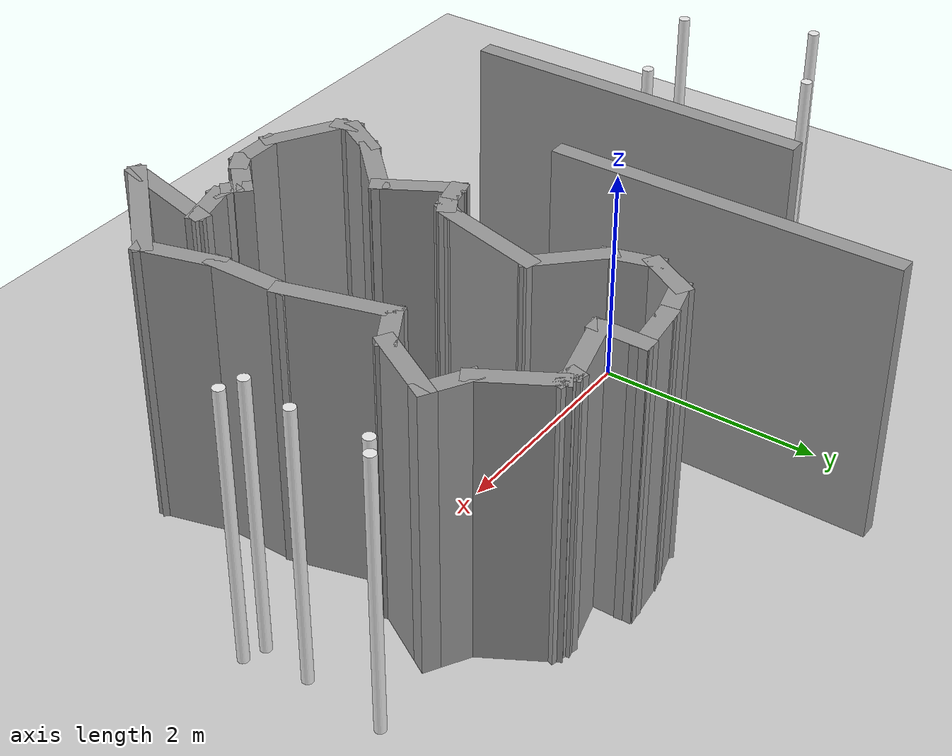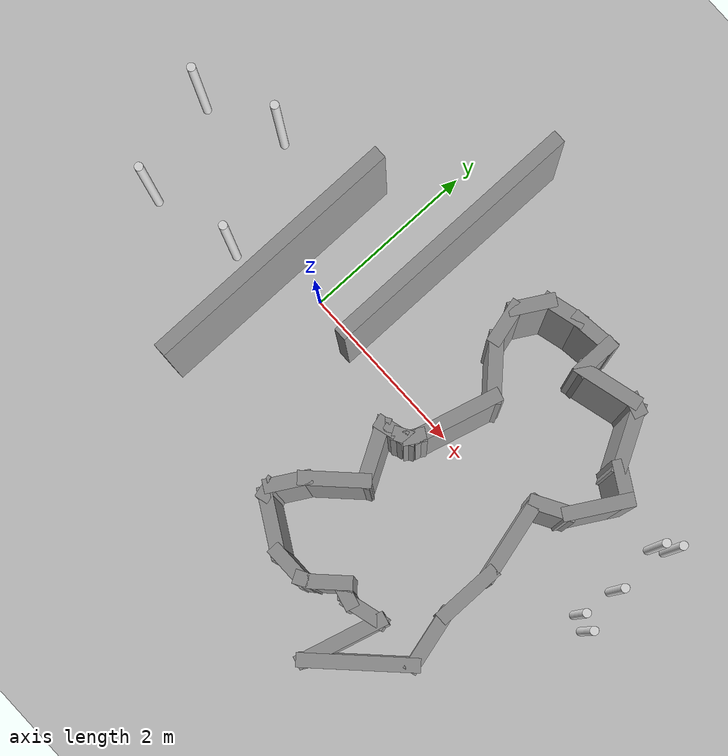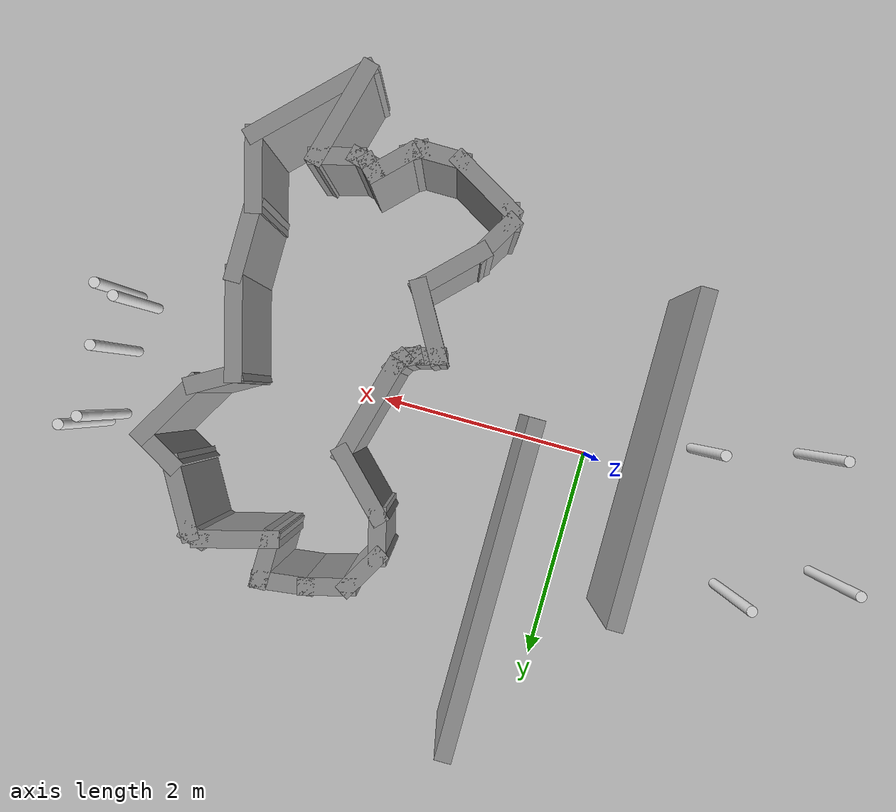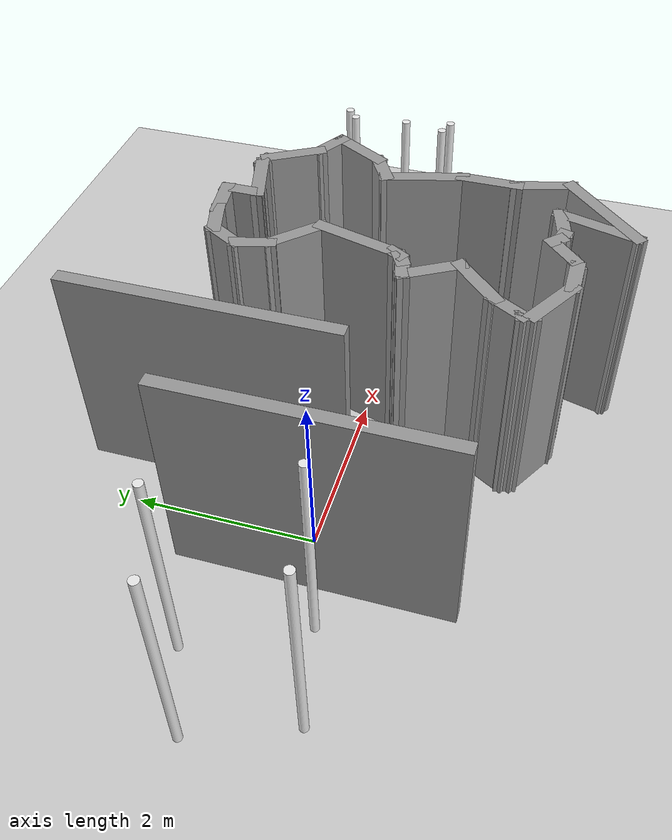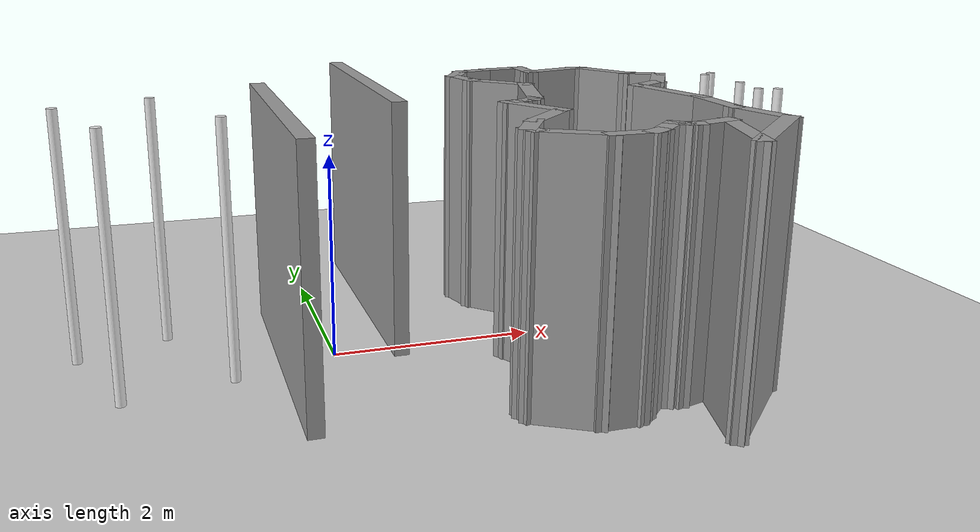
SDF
<sdf version="1.7">
 <world name="default">
  <model name="ground_plane">
   <static>1</static>
   <link name="link">
    <collision name="collision">
     <geometry><plane><normal>0 0 1</normal><size>100 100</size></plane></geometry>
     <surface><friction><ode><mu>100</mu><mu2>50</mu2></ode></friction></surface>
    </collision>
    <visual name="visual">
     <cast_shadows>0</cast_shadows>
     <geometry><plane><normal>0 0 1</normal><size>100 100</size></plane></geometry>
     <material>
      <script><uri>file://media/materials/scripts/gazebo.material</uri><name>Gazebo/Grey</name></script>
     </material>
    </visual>
   </link>
  </model>
  <model name="3m_wall">
   <pose>2.11152 0.271513 0 0 -0 0</pose>
   <link name="Wall_33">
    <collision name="Wall_33_Collision">
     <geometry><box><size>3 0.15 2.5</size></box></geometry>
     <pose>0 0 1.25 0 -0 0</pose>
    </collision>
    <visual name="Wall_33_Visual">
     <pose>0 0 1.25 0 -0 0</pose>
     <geometry><box><size>3 0.15 2.5</size></box></geometry>
     <material>
      <script><uri>file://media/materials/scripts/gazebo.material</uri><name>Gazebo/Grey</name></script>
      <ambient>1 1 1 1</ambient>
     </material>
     <meta><layer>0</layer></meta>
    </visual>
    <pose>-2.5875 -0.4275 0 0 -0 -1.5708</pose>
   </link>
   <static>1</static>
  </model>
  <model name="3m_wall_clone">
   <pose>3.21394 1.72078 0 0 -0 0</pose>
   <link name="Wall_33">
    <collision name="Wall_33_Collision">
     <geometry><box><size>3 0.15 2.5</size></box></geometry>
     <pose>0 0 1.25 0 -0 0</pose>
    </collision>
    <visual name="Wall_33_Visual">
     <pose>0 0 1.25 0 -0 0</pose>
     <geometry><box><size>3 0.15 2.5</size></box></geometry>
     <material>
      <script><uri>file://media/materials/scripts/gazebo.material</uri><name>Gazebo/Grey</name></script>
      <ambient>1 1 1 1</ambient>
     </material>
     <meta><layer>0</layer></meta>
    </visual>
    <pose>-2.5875 -0.4275 0 0 -0 -1.5708</pose>
   </link>
   <static>1</static>
  </model>
  <model name="center_wall003">
   <pose>3.21505 0.764634 0 0 -0 0</pose>
   <link name="Wall_50">
    <collision name="Wall_50_Collision">
     <geometry><box><size>0.5 0.15 2.5</size></box></geometry>
     <pose>0 0 1.25 0 -0 0</pose>
    </collision>
    <visual name="Wall_50_Visual">
     <pose>0 0 1.25 0 -0 0</pose>
     <geometry><box><size>0.5 0.15 2.5</size></box></geometry>
     <material>
      <script><uri>file://media/materials/scripts/gazebo.material</uri><name>Gazebo/Grey</name></script>
      <ambient>1 1 1 1</ambient>
     </material>
     <meta><layer>0</layer></meta>
    </visual>
    <pose>-1.25418 0.867026 0 0 -0 -2.87979</pose>
   </link>
   <link name="Wall_51">
    <collision name="Wall_51_Collision">
     <geometry><box><size>0.5 0.15 2.5</size></box></geometry>
     <pose>0 0 1.25 0 -0 0</pose>
    </collision>
    <visual name="Wall_51_Visual">
     <pose>0 0 1.25 0 -0 0</pose>
     <geometry><box><size>0.5 0.15 2.5</size></box></geometry>
     <material>
      <script><uri>file://media/materials/scripts/gazebo.material</uri><name>Gazebo/Grey</name></script>
      <ambient>1 1 1 1</ambient>
     </material>
     <meta><layer>0</layer></meta>
    </visual>
    <pose>-1.51071 0.670178 0 0 -0 -2.0944</pose>
   </link>
   <link name="Wall_52">
    <collision name="Wall_52_Collision">
     <geometry><box><size>0.5 0.15 2.5</size></box></geometry>
     <pose>0 0 1.25 0 -0 0</pose>
    </collision>
    <visual name="Wall_52_Visual">
     <pose>0 0 1.25 0 -0 0</pose>
     <geometry><box><size>0.5 0.15 2.5</size></box></geometry>
     <material>
      <script><uri>file://media/materials/scripts/gazebo.material</uri><name>Gazebo/Grey</name></script>
      <ambient>1 1 1 1</ambient>
     </material>
     <meta><layer>0</layer></meta>
    </visual>
    <pose>-1.55292 0.349587 0 0 -0 -1.309</pose>
   </link>
   <link name="Wall_53">
    <collision name="Wall_53_Collision">
     <geometry><box><size>0.75 0.15 2.5</size></box></geometry>
     <pose>0 0 1.25 0 -0 0</pose>
    </collision>
    <visual name="Wall_53_Visual">
     <pose>0 0 1.25 0 -0 0</pose>
     <geometry><box><size>0.75 0.15 2.5</size></box></geometry>
     <material>
      <script><uri>file://media/materials/scripts/gazebo.material</uri><name>Gazebo/Grey</name></script>
      <ambient>1 1 1 1</ambient>
     </material>
     <meta><layer>0</layer></meta>
    </visual>
    <pose>-1.29549 -0.031582 0 0 -0 -0.785398</pose>
   </link>
   <link name="Wall_54">
    <collision name="Wall_54_Collision">
     <geometry><box><size>1 0.15 2.5</size></box></geometry>
     <pose>0 0 1.25 0 -0 0</pose>
    </collision>
    <visual name="Wall_54_Visual">
     <pose>0 0 1.25 0 -0 0</pose>
     <geometry><box><size>1 0.15 2.5</size></box></geometry>
     <material>
      <script><uri>file://media/materials/scripts/gazebo.material</uri><name>Gazebo/Grey</name></script>
      <ambient>1 1 1 1</ambient>
     </material>
     <meta><layer>0</layer></meta>
    </visual>
    <pose>-1.19336 -0.654233 0 0 -0 -1.8326</pose>
   </link>
   <link name="Wall_55">
    <collision name="Wall_55_Collision">
     <geometry><box><size>0.25 0.15 2.5</size></box></geometry>
     <pose>0 0 1.25 0 -0 0</pose>
    </collision>
    <visual name="Wall_55_Visual">
     <pose>0 0 1.25 0 -0 0</pose>
     <geometry><box><size>0.25 0.15 2.5</size></box></geometry>
     <material>
      <script><uri>file://media/materials/scripts/gazebo.material</uri><name>Gazebo/Grey</name></script>
      <ambient>1 1 1 1</ambient>
     </material>
     <meta><layer>0</layer></meta>
    </visual>
    <pose>-1.32836 -1.10805 0 0 -0 -2.0944</pose>
   </link>
   <link name="Wall_56">
    <collision name="Wall_56_Collision">
     <geometry><box><size>0.25 0.15 2.5</size></box></geometry>
     <pose>0 0 1.25 0 -0 0</pose>
    </collision>
    <visual name="Wall_56_Visual">
     <pose>0 0 1.25 0 -0 0</pose>
     <geometry><box><size>0.25 0.15 2.5</size></box></geometry>
     <material>
      <script><uri>file://media/materials/scripts/gazebo.material</uri><name>Gazebo/Grey</name></script>
      <ambient>1 1 1 1</ambient>
     </material>
     <meta><layer>0</layer></meta>
    </visual>
    <pose>-1.39666 -1.17635 0 0 -0 -2.61799</pose>
   </link>
   <link name="Wall_57">
    <collision name="Wall_57_Collision">
     <geometry><box><size>0.25 0.15 2.5</size></box></geometry>
     <pose>0 0 1.25 0 -0 0</pose>
    </collision>
    <visual name="Wall_57_Visual">
     <pose>0 0 1.25 0 -0 0</pose>
     <geometry><box><size>0.25 0.15 2.5</size></box></geometry>
     <material>
      <script><uri>file://media/materials/scripts/gazebo.material</uri><name>Gazebo/Grey</name></script>
      <ambient>1 1 1 1</ambient>
     </material>
     <meta><layer>0</layer></meta>
    </visual>
    <pose>-1.48826 -1.21429 0 0 -0 -2.87979</pose>
   </link>
   <link name="Wall_58">
    <collision name="Wall_58_Collision">
     <geometry><box><size>0.25 0.15 2.5</size></box></geometry>
     <pose>0 0 1.25 0 -0 0</pose>
    </collision>
    <visual name="Wall_58_Visual">
     <pose>0 0 1.25 0 -0 0</pose>
     <geometry><box><size>0.25 0.15 2.5</size></box></geometry>
     <material>
      <script><uri>file://media/materials/scripts/gazebo.material</uri><name>Gazebo/Grey</name></script>
      <ambient>1 1 1 1</ambient>
     </material>
     <meta><layer>0</layer></meta>
    </visual>
    <pose>-1.58485 -1.24018 0 0 -0 -2.87979</pose>
   </link>
   <link name="Wall_59">
    <collision name="Wall_59_Collision">
     <geometry><box><size>0.75 0.15 2.5</size></box></geometry>
     <pose>0 0 1.25 0 -0 0</pose>
    </collision>
    <visual name="Wall_59_Visual">
     <pose>0 0 1.25 0 -0 0</pose>
     <geometry><box><size>0.75 0.15 2.5</size></box></geometry>
     <material>
      <script><uri>file://media/materials/scripts/gazebo.material</uri><name>Gazebo/Grey</name></script>
      <ambient>1 1 1 1</ambient>
     </material>
     <meta><layer>0</layer></meta>
    </visual>
    <pose>-1.48315 -1.51293 0 0 -0 -1.0472</pose>
   </link>
   <link name="Wall_60">
    <collision name="Wall_60_Collision">
     <geometry><box><size>0.75 0.15 2.5</size></box></geometry>
     <pose>0 0 1.25 0 -0 0</pose>
    </collision>
    <visual name="Wall_60_Visual">
     <pose>0 0 1.25 0 -0 0</pose>
     <geometry><box><size>0.75 0.15 2.5</size></box></geometry>
     <material>
      <script><uri>file://media/materials/scripts/gazebo.material</uri><name>Gazebo/Grey</name></script>
      <ambient>1 1 1 1</ambient>
     </material>
     <meta><layer>0</layer></meta>
    </visual>
    <pose>-1.54528 -1.98487 0 0 -0 -2.35619</pose>
   </link>
   <link name="Wall_61">
    <collision name="Wall_61_Collision">
     <geometry><box><size>0.5 0.15 2.5</size></box></geometry>
     <pose>0 0 1.25 0 -0 0</pose>
    </collision>
    <visual name="Wall_61_Visual">
     <pose>0 0 1.25 0 -0 0</pose>
     <geometry><box><size>0.5 0.15 2.5</size></box></geometry>
     <material>
      <script><uri>file://media/materials/scripts/gazebo.material</uri><name>Gazebo/Grey</name></script>
      <ambient>1 1 1 1</ambient>
     </material>
     <meta><layer>0</layer></meta>
    </visual>
    <pose>-1.84491 -2.34855 0 0 -0 -2.0944</pose>
   </link>
   <link name="Wall_62">
    <collision name="Wall_62_Collision">
     <geometry><box><size>0.25 0.15 2.5</size></box></geometry>
     <pose>0 0 1.25 0 -0 0</pose>
    </collision>
    <visual name="Wall_62_Visual">
     <pose>0 0 1.25 0 -0 0</pose>
     <geometry><box><size>0.25 0.15 2.5</size></box></geometry>
     <material>
      <script><uri>file://media/materials/scripts/gazebo.material</uri><name>Gazebo/Grey</name></script>
      <ambient>1 1 1 1</ambient>
     </material>
     <meta><layer>0</layer></meta>
    </visual>
    <pose>-1.91947 -2.5484 0 0 -0 -1.309</pose>
   </link>
   <link name="Wall_63">
    <collision name="Wall_63_Collision">
     <geometry><box><size>0.75 0.15 2.5</size></box></geometry>
     <pose>0 0 1.25 0 -0 0</pose>
    </collision>
    <visual name="Wall_63_Visual">
     <pose>0 0 1.25 0 -0 0</pose>
     <geometry><box><size>0.75 0.15 2.5</size></box></geometry>
     <material>
      <script><uri>file://media/materials/scripts/gazebo.material</uri><name>Gazebo/Grey</name></script>
      <ambient>1 1 1 1</ambient>
     </material>
     <meta><layer>0</layer></meta>
    </visual>
    <pose>-1.64672 -2.7467 0 0 -0 -0.523599</pose>
   </link>
   <link name="Wall_64">
    <collision name="Wall_64_Collision">
     <geometry><box><size>0.5 0.15 2.5</size></box></geometry>
     <pose>0 0 1.25 0 -0 0</pose>
    </collision>
    <visual name="Wall_64_Visual">
     <pose>0 0 1.25 0 -0 0</pose>
     <geometry><box><size>0.5 0.15 2.5</size></box></geometry>
     <material>
      <script><uri>file://media/materials/scripts/gazebo.material</uri><name>Gazebo/Grey</name></script>
      <ambient>1 1 1 1</ambient>
     </material>
     <meta><layer>0</layer></meta>
    </visual>
    <pose>-1.21191 -2.8967 0 0 -0 0</pose>
   </link>
   <link name="Wall_65">
    <collision name="Wall_65_Collision">
     <geometry><box><size>0.25 0.15 2.5</size></box></geometry>
     <pose>0 0 1.25 0 -0 0</pose>
    </collision>
    <visual name="Wall_65_Visual">
     <pose>0 0 1.25 0 -0 0</pose>
     <geometry><box><size>0.25 0.15 2.5</size></box></geometry>
     <material>
      <script><uri>file://media/materials/scripts/gazebo.material</uri><name>Gazebo/Grey</name></script>
      <ambient>1 1 1 1</ambient>
     </material>
     <meta><layer>0</layer></meta>
    </visual>
    <pose>-0.993611 -2.8717 0 0 -0 0.523599</pose>
   </link>
   <link name="Wall_66">
    <collision name="Wall_66_Collision">
     <geometry><box><size>0.5 0.15 2.5</size></box></geometry>
     <pose>0 0 1.25 0 -0 0</pose>
    </collision>
    <visual name="Wall_66_Visual">
     <pose>0 0 1.25 0 -0 0</pose>
     <geometry><box><size>0.5 0.15 2.5</size></box></geometry>
     <material>
      <script><uri>file://media/materials/scripts/gazebo.material</uri><name>Gazebo/Grey</name></script>
      <ambient>1 1 1 1</ambient>
     </material>
     <meta><layer>0</layer></meta>
    </visual>
    <pose>-0.826566 -2.72295 0 0 -0 0.785398</pose>
   </link>
   <link name="Wall_69">
    <collision name="Wall_69_Collision">
     <geometry><box><size>0.25 0.15 2.5</size></box></geometry>
     <pose>0 0 1.25 0 -0 0</pose>
    </collision>
    <visual name="Wall_69_Visual">
     <pose>0 0 1.25 0 -0 0</pose>
     <geometry><box><size>0.25 0.15 2.5</size></box></geometry>
     <material>
      <script><uri>file://media/materials/scripts/gazebo.material</uri><name>Gazebo/Grey</name></script>
      <ambient>1 1 1 1</ambient>
     </material>
     <meta><layer>0</layer></meta>
    </visual>
    <pose>-0.667467 -2.63457 0 0 -0 -0.785398</pose>
   </link>
   <link name="Wall_70">
    <collision name="Wall_70_Collision">
     <geometry><box><size>0.25 0.15 2.5</size></box></geometry>
     <pose>0 0 1.25 0 -0 0</pose>
    </collision>
    <visual name="Wall_70_Visual">
     <pose>0 0 1.25 0 -0 0</pose>
     <geometry><box><size>0.25 0.15 2.5</size></box></geometry>
     <material>
      <script><uri>file://media/materials/scripts/gazebo.material</uri><name>Gazebo/Grey</name></script>
      <ambient>1 1 1 1</ambient>
     </material>
     <meta><layer>0</layer></meta>
    </visual>
    <pose>-0.583816 -2.68286 0 0 -0 -0.261799</pose>
   </link>
   <link name="Wall_71">
    <collision name="Wall_71_Collision">
     <geometry><box><size>0.5 0.15 2.5</size></box></geometry>
     <pose>0 0 1.25 0 -0 0</pose>
    </collision>
    <visual name="Wall_71_Visual">
     <pose>0 0 1.25 0 -0 0</pose>
     <geometry><box><size>0.5 0.15 2.5</size></box></geometry>
     <material>
      <script><uri>file://media/materials/scripts/gazebo.material</uri><name>Gazebo/Grey</name></script>
      <ambient>1 1 1 1</ambient>
     </material>
     <meta><layer>0</layer></meta>
    </visual>
    <pose>-0.366482 -2.65051 0 0 -0 0.261799</pose>
   </link>
   <link name="Wall_72">
    <collision name="Wall_72_Collision">
     <geometry><box><size>1 0.15 2.5</size></box></geometry>
     <pose>0 0 1.25 0 -0 0</pose>
    </collision>
    <visual name="Wall_72_Visual">
     <pose>0 0 1.25 0 -0 0</pose>
     <geometry><box><size>1 0.15 2.5</size></box></geometry>
     <material>
      <script><uri>file://media/materials/scripts/gazebo.material</uri><name>Gazebo/Grey</name></script>
      <ambient>1 1 1 1</ambient>
     </material>
     <meta><layer>0</layer></meta>
    </visual>
    <pose>-0.307443 -3.01573 0 0 -0 -1.8326</pose>
   </link>
   <link name="Wall_73">
    <collision name="Wall_73_Collision">
     <geometry><box><size>1.25 0.15 2.5</size></box></geometry>
     <pose>0 0 1.25 0 -0 0</pose>
    </collision>
    <visual name="Wall_73_Visual">
     <pose>0 0 1.25 0 -0 0</pose>
     <geometry><box><size>1.25 0.15 2.5</size></box></geometry>
     <material>
      <script><uri>file://media/materials/scripts/gazebo.material</uri><name>Gazebo/Grey</name></script>
      <ambient>1 1 1 1</ambient>
     </material>
     <meta><layer>0</layer></meta>
    </visual>
    <pose>-0.028533 -3.03735 0 0 -0 0.785398</pose>
   </link>
   <link name="Wall_82">
    <collision name="Wall_82_Collision">
     <geometry><box><size>0.75 0.15 2.5</size></box></geometry>
     <pose>0 0 1.25 0 -0 0</pose>
    </collision>
    <visual name="Wall_82_Visual">
     <pose>0 0 1.25 0 -0 0</pose>
     <geometry><box><size>0.75 0.15 2.5</size></box></geometry>
     <material>
      <script><uri>file://media/materials/scripts/gazebo.material</uri><name>Gazebo/Grey</name></script>
      <ambient>1 1 1 1</ambient>
     </material>
     <meta><layer>0</layer></meta>
    </visual>
    <pose>0.28273 -2.35866 0 0 -0 1.8326</pose>
   </link>
   <link name="Wall_83">
    <collision name="Wall_83_Collision">
     <geometry><box><size>0.75 0.15 2.5</size></box></geometry>
     <pose>0 0 1.25 0 -0 0</pose>
    </collision>
    <visual name="Wall_83_Visual">
     <pose>0 0 1.25 0 -0 0</pose>
     <geometry><box><size>0.75 0.15 2.5</size></box></geometry>
     <material>
      <script><uri>file://media/materials/scripts/gazebo.material</uri><name>Gazebo/Grey</name></script>
      <ambient>1 1 1 1</ambient>
     </material>
     <meta><layer>0</layer></meta>
    </visual>
    <pose>0.205084 -1.76888 0 0 -0 1.5708</pose>
   </link>
   <link name="Wall_84">
    <collision name="Wall_84_Collision">
     <geometry><box><size>1 0.15 2.5</size></box></geometry>
     <pose>0 0 1.25 0 -0 0</pose>
    </collision>
    <visual name="Wall_84_Visual">
     <pose>0 0 1.25 0 -0 0</pose>
     <geometry><box><size>1 0.15 2.5</size></box></geometry>
     <material>
      <script><uri>file://media/materials/scripts/gazebo.material</uri><name>Gazebo/Grey</name></script>
      <ambient>1 1 1 1</ambient>
     </material>
     <meta><layer>0</layer></meta>
    </visual>
    <pose>0.095086 -1.05836 0 0 -0 1.8326</pose>
   </link>
   <link name="Wall_85">
    <collision name="Wall_85_Collision">
     <geometry><box><size>0.5 0.15 2.5</size></box></geometry>
     <pose>0 0 1.25 0 -0 0</pose>
    </collision>
    <visual name="Wall_85_Visual">
     <pose>0 0 1.25 0 -0 0</pose>
     <geometry><box><size>0.5 0.15 2.5</size></box></geometry>
     <material>
      <script><uri>file://media/materials/scripts/gazebo.material</uri><name>Gazebo/Grey</name></script>
      <ambient>1 1 1 1</ambient>
     </material>
     <meta><layer>0</layer></meta>
    </visual>
    <pose>0.136643 -0.560344 0 0 -0 0.523599</pose>
   </link>
   <link name="Wall_86">
    <collision name="Wall_86_Collision">
     <geometry><box><size>0.75 0.15 2.5</size></box></geometry>
     <pose>0 0 1.25 0 -0 0</pose>
    </collision>
    <visual name="Wall_86_Visual">
     <pose>0 0 1.25 0 -0 0</pose>
     <geometry><box><size>0.75 0.15 2.5</size></box></geometry>
     <material>
      <script><uri>file://media/materials/scripts/gazebo.material</uri><name>Gazebo/Grey</name></script>
      <ambient>1 1 1 1</ambient>
     </material>
     <meta><layer>0</layer></meta>
    </visual>
    <pose>0.438197 -0.213036 0 0 -0 1.0472</pose>
   </link>
   <link name="Wall_87">
    <collision name="Wall_87_Collision">
     <geometry><box><size>0.5 0.15 2.5</size></box></geometry>
     <pose>0 0 1.25 0 -0 0</pose>
    </collision>
    <visual name="Wall_87_Visual">
     <pose>0 0 1.25 0 -0 0</pose>
     <geometry><box><size>0.5 0.15 2.5</size></box></geometry>
     <material>
      <script><uri>file://media/materials/scripts/gazebo.material</uri><name>Gazebo/Grey</name></script>
      <ambient>1 1 1 1</ambient>
     </material>
     <meta><layer>0</layer></meta>
    </visual>
    <pose>0.436643 0.134271 0 0 -0 2.61799</pose>
   </link>
   <link name="Wall_88">
    <collision name="Wall_88_Collision">
     <geometry><box><size>0.75 0.15 2.5</size></box></geometry>
     <pose>0 0 1.25 0 -0 0</pose>
    </collision>
    <visual name="Wall_88_Visual">
     <pose>0 0 1.25 0 -0 0</pose>
     <geometry><box><size>0.75 0.15 2.5</size></box></geometry>
     <material>
      <script><uri>file://media/materials/scripts/gazebo.material</uri><name>Gazebo/Grey</name></script>
      <ambient>1 1 1 1</ambient>
     </material>
     <meta><layer>0</layer></meta>
    </visual>
    <pose>0.135088 0.481579 0 0 -0 2.0944</pose>
   </link>
   <link name="Wall_89">
    <collision name="Wall_89_Collision">
     <geometry><box><size>0.25 0.15 2.5</size></box></geometry>
     <pose>0 0 1.25 0 -0 0</pose>
    </collision>
    <visual name="Wall_89_Visual">
     <pose>0 0 1.25 0 -0 0</pose>
     <geometry><box><size>0.25 0.15 2.5</size></box></geometry>
     <material>
      <script><uri>file://media/materials/scripts/gazebo.material</uri><name>Gazebo/Grey</name></script>
      <ambient>1 1 1 1</ambient>
     </material>
     <meta><layer>0</layer></meta>
    </visual>
    <pose>-0.063208 0.754328 0 0 -0 2.87979</pose>
   </link>
   <link name="Wall_90">
    <collision name="Wall_90_Collision">
     <geometry><box><size>0.75 0.15 2.5</size></box></geometry>
     <pose>0 0 1.25 0 -0 0</pose>
    </collision>
    <visual name="Wall_90_Visual">
     <pose>0 0 1.25 0 -0 0</pose>
     <geometry><box><size>0.75 0.15 2.5</size></box></geometry>
     <material>
      <script><uri>file://media/materials/scripts/gazebo.material</uri><name>Gazebo/Grey</name></script>
      <ambient>1 1 1 1</ambient>
     </material>
     <meta><layer>0</layer></meta>
    </visual>
    <pose>-0.401282 0.689623 0 0 -0 -2.87979</pose>
   </link>
   <link name="Wall_91">
    <collision name="Wall_91_Collision">
     <geometry><box><size>0.5 0.15 2.5</size></box></geometry>
     <pose>0 0 1.25 0 -0 0</pose>
    </collision>
    <visual name="Wall_91_Visual">
     <pose>0 0 1.25 0 -0 0</pose>
     <geometry><box><size>0.5 0.15 2.5</size></box></geometry>
     <material>
      <script><uri>file://media/materials/scripts/gazebo.material</uri><name>Gazebo/Grey</name></script>
      <ambient>1 1 1 1</ambient>
     </material>
     <meta><layer>0</layer></meta>
    </visual>
    <pose>-0.69106 0.786977 0 0 -0 1.5708</pose>
   </link>
   <link name="Wall_92">
    <collision name="Wall_92_Collision">
     <geometry><box><size>0.547195 0.15 2.5</size></box></geometry>
     <pose>0 0 1.25 0 -0 0</pose>
    </collision>
    <visual name="Wall_92_Visual">
     <pose>0 0 1.25 0 -0 0</pose>
     <geometry><box><size>0.547195 0.15 2.5</size></box></geometry>
     <material>
      <script><uri>file://media/materials/scripts/gazebo.material</uri><name>Gazebo/Grey</name></script>
      <ambient>1 1 1 1</ambient>
     </material>
     <meta><layer>0</layer></meta>
    </visual>
    <pose>-0.888099 0.937148 0 0 -0 -3.01624</pose>
   </link>
   <static>1</static>
  </model>
  <model name="White_pole_clone_clone_10_clone_3">
   <link name="link_0">
    <inertial>
     <mass>1</mass>
     <inertia><ixx>0.145833</ixx><ixy>0</ixy><ixz>0</ixz><iyy>0.145833</iyy><iyz>0</iyz><izz>0.125</izz></inertia>
    </inertial>
    <visual name="visual">
     <geometry><cylinder><radius>0.0478039</radius><length>2.47001</length></cylinder></geometry>
     <material>
      <lighting>1</lighting>
      <script><uri>file://media/materials/scripts/gazebo.material</uri><name>Gazebo/White</name></script>
      <shader type="vertex"><normal_map>__default__</normal_map></shader>
      <ambient>1 1 1 1</ambient>
      <diffuse>1 1 1 1</diffuse>
      <specular>0 0 0 1</specular>
      <emissive>0 0 0 1</emissive>
     </material>
    </visual>
    <collision name="collision">
     <geometry><cylinder><radius>0.047804</radius><length>2.47001</length></cylinder></geometry>
     <surface>
      <friction>
       <ode><mu>1</mu><mu2>1</mu2><fdir1>0 0 0</fdir1><slip1>0</slip1><slip2>0</slip2></ode>
       <torsional>
        <coefficient>1</coefficient>
        <patch_radius>0</patch_radius>
        <surface_radius>0</surface_radius>
        <use_patch_radius>1</use_patch_radius>
        <ode><slip>0</slip></ode>
       </torsional>
      </friction>
      <bounce><restitution_coefficient>0</restitution_coefficient><threshold>1e+06</threshold></bounce>
      <contact>
       <collide_without_contact>0</collide_without_contact>
       <collide_without_contact_bitmask>1</collide_without_contact_bitmask>
       <collide_bitmask>1</collide_bitmask>
       <ode>
        <soft_cfm>0</soft_cfm>
        <soft_erp>0.2</soft_erp>
        <kp>1e+13</kp>
        <kd>1</kd>
        <max_vel>0.01</max_vel>
        <min_depth>0</min_depth>
       </ode>
       <bullet>
        <split_impulse>1</split_impulse>
        <split_impulse_penetration_threshold>-0.01</split_impulse_penetration_threshold>
        <soft_cfm>0</soft_cfm>
        <soft_erp>0.2</soft_erp>
        <kp>1e+13</kp>
        <kd>1</kd>
       </bullet>
      </contact>
     </surface>
    </collision>
   </link>
   <static>1</static>
   <pose>4.53667 -0.314136 1.235 0 -2e-06 -5e-06</pose>
  </model>
  <model name="White_pole_clone_clone_10_clone_4">
   <link name="link_0">
    <inertial>
     <mass>1</mass>
     <inertia><ixx>0.145833</ixx><ixy>0</ixy><ixz>0</ixz><iyy>0.145833</iyy><iyz>0</iyz><izz>0.125</izz></inertia>
    </inertial>
    <visual name="visual">
     <geometry><cylinder><radius>0.0478039</radius><length>2.47001</length></cylinder></geometry>
     <material>
      <lighting>1</lighting>
      <script><uri>file://media/materials/scripts/gazebo.material</uri><name>Gazebo/White</name></script>
      <shader type="vertex"><normal_map>__default__</normal_map></shader>
      <ambient>1 1 1 1</ambient>
      <diffuse>1 1 1 1</diffuse>
      <specular>0 0 0 1</specular>
      <emissive>0 0 0 1</emissive>
     </material>
    </visual>
    <collision name="collision">
     <geometry><cylinder><radius>0.047804</radius><length>2.47001</length></cylinder></geometry>
     <surface>
      <friction>
       <ode><mu>1</mu><mu2>1</mu2><fdir1>0 0 0</fdir1><slip1>0</slip1><slip2>0</slip2></ode>
       <torsional>
        <coefficient>1</coefficient>
        <patch_radius>0</patch_radius>
        <surface_radius>0</surface_radius>
        <use_patch_radius>1</use_patch_radius>
        <ode><slip>0</slip></ode>
       </torsional>
      </friction>
      <bounce><restitution_coefficient>0</restitution_coefficient><threshold>1e+06</threshold></bounce>
      <contact>
       <collide_without_contact>0</collide_without_contact>
       <collide_without_contact_bitmask>1</collide_without_contact_bitmask>
       <collide_bitmask>1</collide_bitmask>
       <ode>
        <soft_cfm>0</soft_cfm>
        <soft_erp>0.2</soft_erp>
        <kp>1e+13</kp>
        <kd>1</kd>
        <max_vel>0.01</max_vel>
        <min_depth>0</min_depth>
       </ode>
       <bullet>
        <split_impulse>1</split_impulse>
        <split_impulse_penetration_threshold>-0.01</split_impulse_penetration_threshold>
        <soft_cfm>0</soft_cfm>
        <soft_erp>0.2</soft_erp>
        <kp>1e+13</kp>
        <kd>1</kd>
       </bullet>
      </contact>
     </surface>
    </collision>
   </link>
   <static>1</static>
   <pose>4.35636 -0.250737 1.235 0 -2e-06 -5e-06</pose>
  </model>
  <model name="White_pole_clone_clone_10_clone_6">
   <link name="link_0">
    <inertial>
     <mass>1</mass>
     <inertia><ixx>0.145833</ixx><ixy>0</ixy><ixz>0</ixz><iyy>0.145833</iyy><iyz>0</iyz><izz>0.125</izz></inertia>
    </inertial>
    <visual name="visual">
     <geometry><cylinder><radius>0.0478039</radius><length>2.47001</length></cylinder></geometry>
     <material>
      <lighting>1</lighting>
      <script><uri>file://media/materials/scripts/gazebo.material</uri><name>Gazebo/White</name></script>
      <shader type="vertex"><normal_map>__default__</normal_map></shader>
      <ambient>1 1 1 1</ambient>
      <diffuse>1 1 1 1</diffuse>
      <specular>0 0 0 1</specular>
      <emissive>0 0 0 1</emissive>
     </material>
    </visual>
    <collision name="collision">
     <geometry><cylinder><radius>0.047804</radius><length>2.47001</length></cylinder></geometry>
     <surface>
      <friction>
       <ode><mu>1</mu><mu2>1</mu2><fdir1>0 0 0</fdir1><slip1>0</slip1><slip2>0</slip2></ode>
       <torsional>
        <coefficient>1</coefficient>
        <patch_radius>0</patch_radius>
        <surface_radius>0</surface_radius>
        <use_patch_radius>1</use_patch_radius>
        <ode><slip>0</slip></ode>
       </torsional>
      </friction>
      <bounce><restitution_coefficient>0</restitution_coefficient><threshold>1e+06</threshold></bounce>
      <contact>
       <collide_without_contact>0</collide_without_contact>
       <collide_without_contact_bitmask>1</collide_without_contact_bitmask>
       <collide_bitmask>1</collide_bitmask>
       <ode>
        <soft_cfm>0</soft_cfm>
        <soft_erp>0.2</soft_erp>
        <kp>1e+13</kp>
        <kd>1</kd>
        <max_vel>0.01</max_vel>
        <min_depth>0</min_depth>
       </ode>
       <bullet>
        <split_impulse>1</split_impulse>
        <split_impulse_penetration_threshold>-0.01</split_impulse_penetration_threshold>
        <soft_cfm>0</soft_cfm>
        <soft_erp>0.2</soft_erp>
        <kp>1e+13</kp>
        <kd>1</kd>
       </bullet>
      </contact>
     </surface>
    </collision>
   </link>
   <static>1</static>
   <pose>4.43101 0.202602 1.235 0 -2e-06 -5e-06</pose>
  </model>
  <model name="White_pole_clone_clone_10_clone_7">
   <link name="link_0">
    <inertial>
     <mass>1</mass>
     <inertia><ixx>0.145833</ixx><ixy>0</ixy><ixz>0</ixz><iyy>0.145833</iyy><iyz>0</iyz><izz>0.125</izz></inertia>
    </inertial>
    <visual name="visual">
     <geometry><cylinder><radius>0.0478039</radius><length>2.47001</length></cylinder></geometry>
     <material>
      <lighting>1</lighting>
      <script><uri>file://media/materials/scripts/gazebo.material</uri><name>Gazebo/White</name></script>
      <shader type="vertex"><normal_map>__default__</normal_map></shader>
      <ambient>1 1 1 1</ambient>
      <diffuse>1 1 1 1</diffuse>
      <specular>0 0 0 1</specular>
      <emissive>0 0 0 1</emissive>
     </material>
    </visual>
    <collision name="collision">
     <geometry><cylinder><radius>0.047804</radius><length>2.47001</length></cylinder></geometry>
     <surface>
      <friction>
       <ode><mu>1</mu><mu2>1</mu2><fdir1>0 0 0</fdir1><slip1>0</slip1><slip2>0</slip2></ode>
       <torsional>
        <coefficient>1</coefficient>
        <patch_radius>0</patch_radius>
        <surface_radius>0</surface_radius>
        <use_patch_radius>1</use_patch_radius>
        <ode><slip>0</slip></ode>
       </torsional>
      </friction>
      <bounce><restitution_coefficient>0</restitution_coefficient><threshold>1e+06</threshold></bounce>
      <contact>
       <collide_without_contact>0</collide_without_contact>
       <collide_without_contact_bitmask>1</collide_without_contact_bitmask>
       <collide_bitmask>1</collide_bitmask>
       <ode>
        <soft_cfm>0</soft_cfm>
        <soft_erp>0.2</soft_erp>
        <kp>1e+13</kp>
        <kd>1</kd>
        <max_vel>0.01</max_vel>
        <min_depth>0</min_depth>
       </ode>
       <bullet>
        <split_impulse>1</split_impulse>
        <split_impulse_penetration_threshold>-0.01</split_impulse_penetration_threshold>
        <soft_cfm>0</soft_cfm>
        <soft_erp>0.2</soft_erp>
        <kp>1e+13</kp>
        <kd>1</kd>
       </bullet>
      </contact>
     </surface>
    </collision>
   </link>
   <static>1</static>
   <pose>4.51181 0.921411 1.235 0 -2e-06 -5e-06</pose>
  </model>
  <model name="White_pole_clone_clone_10_clone_8">
   <link name="link_0">
    <inertial>
     <mass>1</mass>
     <inertia><ixx>0.145833</ixx><ixy>0</ixy><ixz>0</ixz><iyy>0.145833</iyy><iyz>0</iyz><izz>0.125</izz></inertia>
    </inertial>
    <visual name="visual">
     <geometry><cylinder><radius>0.0478039</radius><length>2.47001</length></cylinder></geometry>
     <material>
      <lighting>1</lighting>
      <script><uri>file://media/materials/scripts/gazebo.material</uri><name>Gazebo/White</name></script>
      <shader type="vertex"><normal_map>__default__</normal_map></shader>
      <ambient>1 1 1 1</ambient>
      <diffuse>1 1 1 1</diffuse>
      <specular>0 0 0 1</specular>
      <emissive>0 0 0 1</emissive>
     </material>
    </visual>
    <collision name="collision">
     <geometry><cylinder><radius>0.047804</radius><length>2.47001</length></cylinder></geometry>
     <surface>
      <friction>
       <ode><mu>1</mu><mu2>1</mu2><fdir1>0 0 0</fdir1><slip1>0</slip1><slip2>0</slip2></ode>
       <torsional>
        <coefficient>1</coefficient>
        <patch_radius>0</patch_radius>
        <surface_radius>0</surface_radius>
        <use_patch_radius>1</use_patch_radius>
        <ode><slip>0</slip></ode>
       </torsional>
      </friction>
      <bounce><restitution_coefficient>0</restitution_coefficient><threshold>1e+06</threshold></bounce>
      <contact>
       <collide_without_contact>0</collide_without_contact>
       <collide_without_contact_bitmask>1</collide_without_contact_bitmask>
       <collide_bitmask>1</collide_bitmask>
       <ode>
        <soft_cfm>0</soft_cfm>
        <soft_erp>0.2</soft_erp>
        <kp>1e+13</kp>
        <kd>1</kd>
        <max_vel>0.01</max_vel>
        <min_depth>0</min_depth>
       </ode>
       <bullet>
        <split_impulse>1</split_impulse>
        <split_impulse_penetration_threshold>-0.01</split_impulse_penetration_threshold>
        <soft_cfm>0</soft_cfm>
        <soft_erp>0.2</soft_erp>
        <kp>1e+13</kp>
        <kd>1</kd>
       </bullet>
      </contact>
     </surface>
    </collision>
   </link>
   <static>1</static>
   <pose>4.37881 0.813389 1.235 0 -2e-06 -5e-06</pose>
  </model>
  <model name="White_pole_clone_clone_5_clone_clone_2">
   <link name="link_0">
    <inertial>
     <mass>1</mass>
     <inertia><ixx>0.145833</ixx><ixy>0</ixy><ixz>0</ixz><iyy>0.145833</iyy><iyz>0</iyz><izz>0.125</izz></inertia>
    </inertial>
    <visual name="visual">
     <geometry><cylinder><radius>0.0478039</radius><length>2.47001</length></cylinder></geometry>
     <material>
      <lighting>1</lighting>
      <script><uri>file://media/materials/scripts/gazebo.material</uri><name>Gazebo/White</name></script>
      <shader type="vertex"><normal_map>__default__</normal_map></shader>
      <ambient>1 1 1 1</ambient>
      <diffuse>1 1 1 1</diffuse>
      <specular>0 0 0 1</specular>
      <emissive>0 0 0 1</emissive>
     </material>
    </visual>
    <collision name="collision">
     <geometry><cylinder><radius>0.047804</radius><length>2.47001</length></cylinder></geometry>
     <surface>
      <friction>
       <ode><mu>1</mu><mu2>1</mu2><fdir1>0 0 0</fdir1><slip1>0</slip1><slip2>0</slip2></ode>
       <torsional>
        <coefficient>1</coefficient>
        <patch_radius>0</patch_radius>
        <surface_radius>0</surface_radius>
        <use_patch_radius>1</use_patch_radius>
        <ode><slip>0</slip></ode>
       </torsional>
      </friction>
      <bounce><restitution_coefficient>0</restitution_coefficient><threshold>1e+06</threshold></bounce>
      <contact>
       <collide_without_contact>0</collide_without_contact>
       <collide_without_contact_bitmask>1</collide_without_contact_bitmask>
       <collide_bitmask>1</collide_bitmask>
       <ode>
        <soft_cfm>0</soft_cfm>
        <soft_erp>0.2</soft_erp>
        <kp>1e+13</kp>
        <kd>1</kd>
        <max_vel>0.01</max_vel>
        <min_depth>0</min_depth>
       </ode>
       <bullet>
        <split_impulse>1</split_impulse>
        <split_impulse_penetration_threshold>-0.01</split_impulse_penetration_threshold>
        <soft_cfm>0</soft_cfm>
        <soft_erp>0.2</soft_erp>
        <kp>1e+13</kp>
        <kd>1</kd>
       </bullet>
      </contact>
     </surface>
    </collision>
   </link>
   <static>1</static>
   <pose>-2.00689 -0.562463 1.235 0 -2e-06 -5e-06</pose>
  </model>
  <model name="White_pole_clone_clone_5_clone_clone_3">
   <link name="link_0">
    <inertial>
     <mass>1</mass>
     <inertia><ixx>0.145833</ixx><ixy>0</ixy><ixz>0</ixz><iyy>0.145833</iyy><iyz>0</iyz><izz>0.125</izz></inertia>
    </inertial>
    <visual name="visual">
     <geometry><cylinder><radius>0.0478039</radius><length>2.47001</length></cylinder></geometry>
     <material>
      <lighting>1</lighting>
      <script><uri>file://media/materials/scripts/gazebo.material</uri><name>Gazebo/White</name></script>
      <shader type="vertex"><normal_map>__default__</normal_map></shader>
      <ambient>1 1 1 1</ambient>
      <diffuse>1 1 1 1</diffuse>
      <specular>0 0 0 1</specular>
      <emissive>0 0 0 1</emissive>
     </material>
    </visual>
    <collision name="collision">
     <geometry><cylinder><radius>0.047804</radius><length>2.47001</length></cylinder></geometry>
     <surface>
      <friction>
       <ode><mu>1</mu><mu2>1</mu2><fdir1>0 0 0</fdir1><slip1>0</slip1><slip2>0</slip2></ode>
       <torsional>
        <coefficient>1</coefficient>
        <patch_radius>0</patch_radius>
        <surface_radius>0</surface_radius>
        <use_patch_radius>1</use_patch_radius>
        <ode><slip>0</slip></ode>
       </torsional>
      </friction>
      <bounce><restitution_coefficient>0</restitution_coefficient><threshold>1e+06</threshold></bounce>
      <contact>
       <collide_without_contact>0</collide_without_contact>
       <collide_without_contact_bitmask>1</collide_without_contact_bitmask>
       <collide_bitmask>1</collide_bitmask>
       <ode>
        <soft_cfm>0</soft_cfm>
        <soft_erp>0.2</soft_erp>
        <kp>1e+13</kp>
        <kd>1</kd>
        <max_vel>0.01</max_vel>
        <min_depth>0</min_depth>
       </ode>
       <bullet>
        <split_impulse>1</split_impulse>
        <split_impulse_penetration_threshold>-0.01</split_impulse_penetration_threshold>
        <soft_cfm>0</soft_cfm>
        <soft_erp>0.2</soft_erp>
        <kp>1e+13</kp>
        <kd>1</kd>
       </bullet>
      </contact>
     </surface>
    </collision>
   </link>
   <static>1</static>
   <pose>-0.990338 -0.332442 1.235 0 -2e-06 -5e-06</pose>
  </model>
  <model name="White_pole_clone_clone_5_clone_clone_4">
   <link name="link_0">
    <inertial>
     <mass>1</mass>
     <inertia><ixx>0.145833</ixx><ixy>0</ixy><ixz>0</ixz><iyy>0.145833</iyy><iyz>0</iyz><izz>0.125</izz></inertia>
    </inertial>
    <visual name="visual">
     <geometry><cylinder><radius>0.0478039</radius><length>2.47001</length></cylinder></geometry>
     <material>
      <lighting>1</lighting>
      <script><uri>file://media/materials/scripts/gazebo.material</uri><name>Gazebo/White</name></script>
      <shader type="vertex"><normal_map>__default__</normal_map></shader>
      <ambient>1 1 1 1</ambient>
      <diffuse>1 1 1 1</diffuse>
      <specular>0 0 0 1</specular>
      <emissive>0 0 0 1</emissive>
     </material>
    </visual>
    <collision name="collision">
     <geometry><cylinder><radius>0.047804</radius><length>2.47001</length></cylinder></geometry>
     <surface>
      <friction>
       <ode><mu>1</mu><mu2>1</mu2><fdir1>0 0 0</fdir1><slip1>0</slip1><slip2>0</slip2></ode>
       <torsional>
        <coefficient>1</coefficient>
        <patch_radius>0</patch_radius>
        <surface_radius>0</surface_radius>
        <use_patch_radius>1</use_patch_radius>
        <ode><slip>0</slip></ode>
       </torsional>
      </friction>
      <bounce><restitution_coefficient>0</restitution_coefficient><threshold>1e+06</threshold></bounce>
      <contact>
       <collide_without_contact>0</collide_without_contact>
       <collide_without_contact_bitmask>1</collide_without_contact_bitmask>
       <collide_bitmask>1</collide_bitmask>
       <ode>
        <soft_cfm>0</soft_cfm>
        <soft_erp>0.2</soft_erp>
        <kp>1e+13</kp>
        <kd>1</kd>
        <max_vel>0.01</max_vel>
        <min_depth>0</min_depth>
       </ode>
       <bullet>
        <split_impulse>1</split_impulse>
        <split_impulse_penetration_threshold>-0.01</split_impulse_penetration_threshold>
        <soft_cfm>0</soft_cfm>
        <soft_erp>0.2</soft_erp>
        <kp>1e+13</kp>
        <kd>1</kd>
       </bullet>
      </contact>
     </surface>
    </collision>
   </link>
   <static>1</static>
   <pose>-1.55287 0.875838 1.235 0 -2e-06 -5e-06</pose>
  </model>
  <model name="White_pole_clone_clone_5_clone_clone_5">
   <link name="link_0">
    <inertial>
     <mass>1</mass>
     <inertia><ixx>0.145833</ixx><ixy>0</ixy><ixz>0</ixz><iyy>0.145833</iyy><iyz>0</iyz><izz>0.125</izz></inertia>
    </inertial>
    <visual name="visual">
     <geometry><cylinder><radius>0.0478039</radius><length>2.47001</length></cylinder></geometry>
     <material>
      <lighting>1</lighting>
      <script><uri>file://media/materials/scripts/gazebo.material</uri><name>Gazebo/White</name></script>
      <shader type="vertex"><normal_map>__default__</normal_map></shader>
      <ambient>1 1 1 1</ambient>
      <diffuse>1 1 1 1</diffuse>
      <specular>0 0 0 1</specular>
      <emissive>0 0 0 1</emissive>
     </material>
    </visual>
    <collision name="collision">
     <geometry><cylinder><radius>0.047804</radius><length>2.47001</length></cylinder></geometry>
     <surface>
      <friction>
       <ode><mu>1</mu><mu2>1</mu2><fdir1>0 0 0</fdir1><slip1>0</slip1><slip2>0</slip2></ode>
       <torsional>
        <coefficient>1</coefficient>
        <patch_radius>0</patch_radius>
        <surface_radius>0</surface_radius>
        <use_patch_radius>1</use_patch_radius>
        <ode><slip>0</slip></ode>
       </torsional>
      </friction>
      <bounce><restitution_coefficient>0</restitution_coefficient><threshold>1e+06</threshold></bounce>
      <contact>
       <collide_without_contact>0</collide_without_contact>
       <collide_without_contact_bitmask>1</collide_without_contact_bitmask>
       <collide_bitmask>1</collide_bitmask>
       <ode>
        <soft_cfm>0</soft_cfm>
        <soft_erp>0.2</soft_erp>
        <kp>1e+13</kp>
        <kd>1</kd>
        <max_vel>0.01</max_vel>
        <min_depth>0</min_depth>
       </ode>
       <bullet>
        <split_impulse>1</split_impulse>
        <split_impulse_penetration_threshold>-0.01</split_impulse_penetration_threshold>
        <soft_cfm>0</soft_cfm>
        <soft_erp>0.2</soft_erp>
        <kp>1e+13</kp>
        <kd>1</kd>
       </bullet>
      </contact>
     </surface>
    </collision>
   </link>
   <static>1</static>
   <pose>-2.4074 0.509099 1.235 0 -2e-06 -5e-06</pose>
  </model>
 </world>
</sdf>
